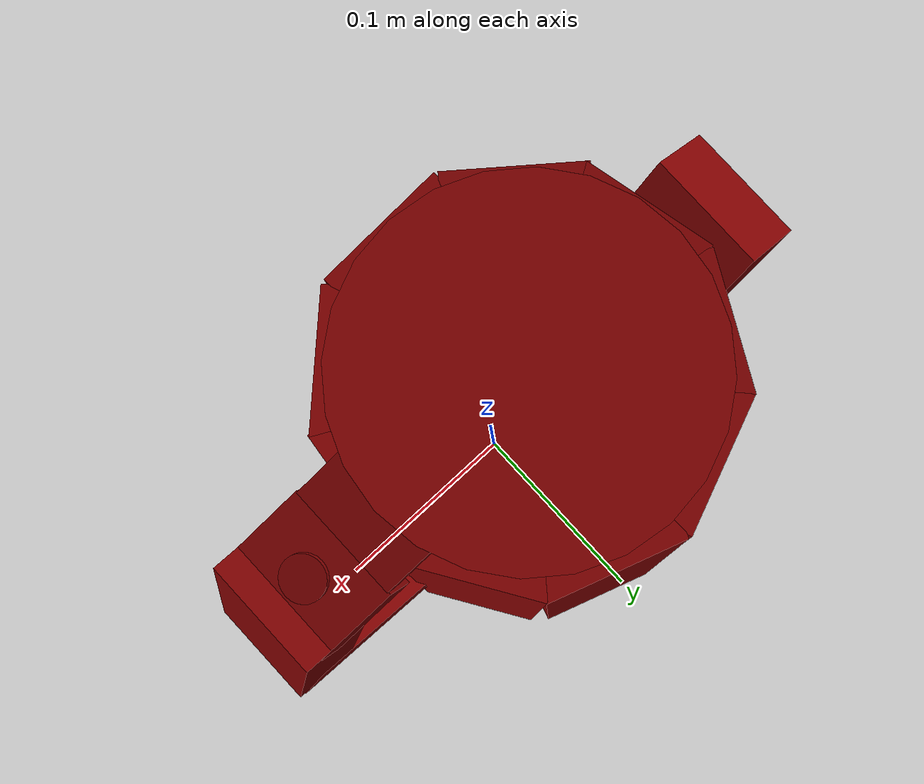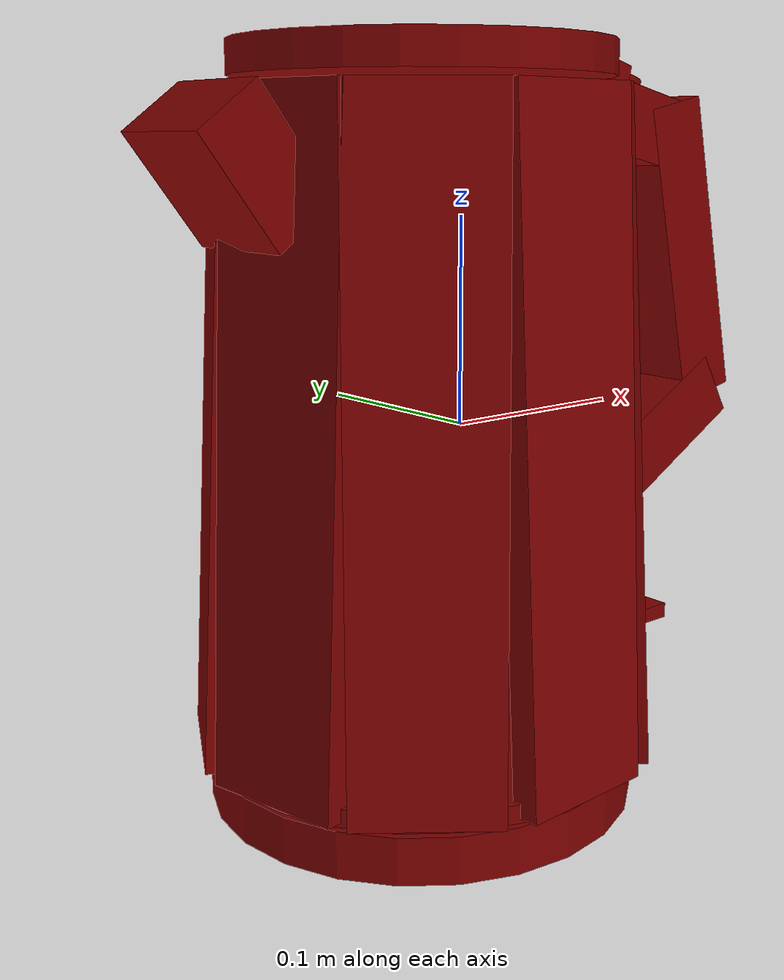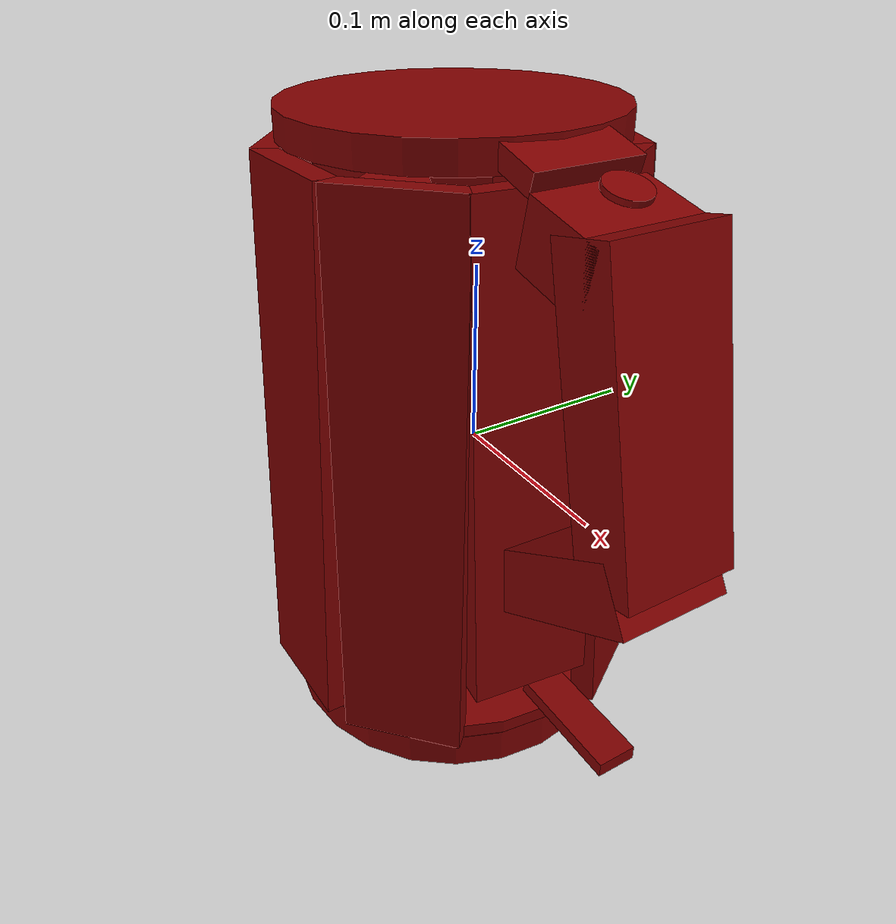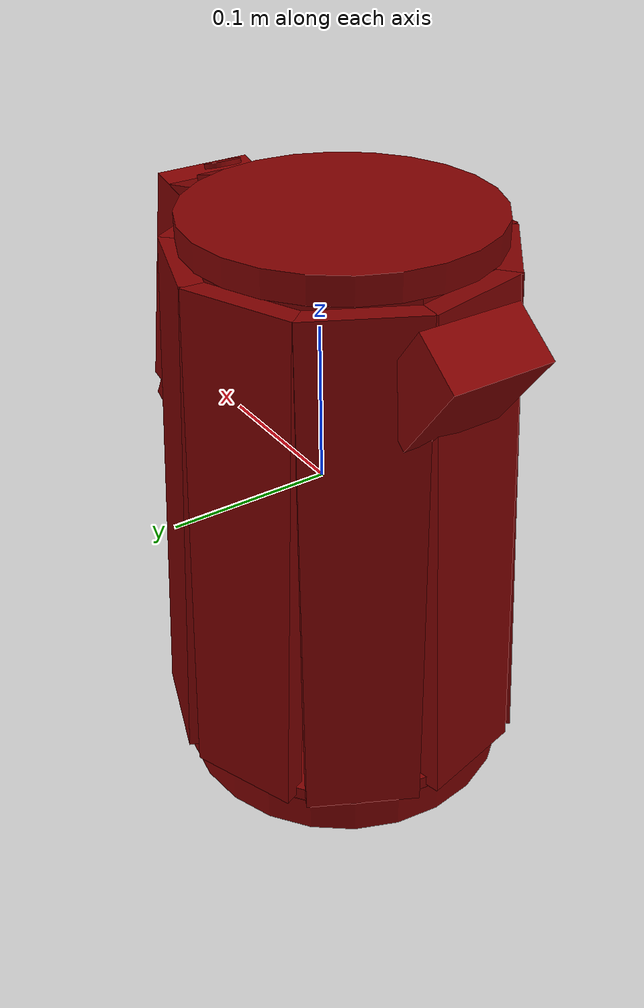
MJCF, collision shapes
<?xml version='1.0' encoding='UTF-8'?>
<mujoco model="model">
  <option timestep="0.002" gravity="0.0 0.0 -9.81"/>
  <compiler angle="radian"/>
  <asset>
    <mesh file="visuals/button_lid.obj" name="button_lid_vis"/>
    <mesh file="visuals/Body001.obj" name="Body001_vis"/>
    <mesh file="visuals/kettle_main.obj" name="kettle_main_vis"/>
    <mesh file="visuals/lid.obj" name="lid_vis"/>
    <mesh file="visuals/switch.obj" name="switch_vis"/>
    <texture file="visuals/T_BC001.png" name="Body001_material" type="2d"/>
    <material name="Body001_material" rgba="1 1 1 1.0" texture="Body001_material" shininess="0.5" specular="0.3103448502657381"/>
    <texture file="visuals/T_BC001.png" name="kettle_main_material" type="2d"/>
    <material name="kettle_main_material" rgba="1 1 1 1.0" texture="kettle_main_material" shininess="0.5" specular="0.3103448502657381"/>
    <texture file="visuals/T_BC001.png" name="button_lid_material" type="2d"/>
    <material name="button_lid_material" rgba="1 1 1 1.0" texture="button_lid_material" shininess="0.5" specular="0.3103448502657381"/>
    <texture file="visuals/T_BC001.png" name="lid_material" type="2d"/>
    <material name="lid_material" rgba="1 1 1 1.0" texture="lid_material" shininess="0.5" specular="0.3103448502657381"/>
    <texture file="visuals/T_BC001.png" name="switch_material" type="2d"/>
    <material name="switch_material" rgba="1 1 1 1.0" texture="switch_material" shininess="0.5" specular="0.3103448502657381"/>
  </asset>
  <default>
    <default class="visual">
      <geom conaffinity="0" contype="0" group="1" type="mesh"/>
    </default>
    <default class="collision">
      <geom group="0" rgba="0.5 0 0 0.5" density="1.0" solref="0.004 1" solimp="0.998 0.998 0.001"/>
    </default>
    <default class="spawn">
      <geom group="0" rgba="1 1 1 0.5" contype="0" conaffinity="0"/>
      <site group="0" rgba="1 1 1 0.5"/>
    </default>
    <default class="region">
      <geom group="1" conaffinity="0" contype="0" rgba="0 1 0 0" mass="0"/>
    </default>
  </default>
  <worldbody>
    <body>
      <body name="object">
        <geom mesh="Body001_vis" type="mesh" solimp="0.998 0.998 0.001" solref="0.001 1" friction="0.95 0.3 0.1" class="visual" material="Body001_material"/>
        <geom type="cylinder" pos="-0.024857325479388237 0.00047307158820331097 -0.16585730016231537" size="0.10320910811424255 0.011144384741783142" quat="1.0 0.0 0.0 0.0" class="collision"/>
        <body name="kettle_main">
          <geom mesh="kettle_main_vis" type="mesh" solimp="0.998 0.998 0.001" solref="0.001 1" friction="0.95 0.3 0.1" class="visual" material="kettle_main_material"/>
          <geom type="box" pos="-0.02007926255464554 -0.0943201407790184 0.004749476909637451" size="0.03371613100171089 0.006794779561460018 0.15397880971431732" quat="0.9994276165962219 -0.026396609842777252 -0.0005586353363469243 0.02115102857351303" class="collision"/>
          <geom type="box" pos="-0.08264882862567902 -0.07359472662210464 0.004749476909637451" size="0.03371613472700119 0.006794779095798731 0.15397880971431732" quat="0.9439072608947754 -0.024930225685238838 0.008693511597812176 -0.3291534185409546" class="collision"/>
          <geom type="box" pos="-0.1156603991985321 -0.020610693842172623 0.004749476909637451" size="0.03371613100171089 0.006794779095798731 0.15397880971431732" quat="0.7819451093673706 -0.020652519538998604 0.01644890196621418 -0.6227878928184509" class="collision"/>
          <geom type="box" pos="-0.10713896155357361 0.0438399463891983 0.004749476909637451" size="0.03371613100171089 0.006794779095798731 0.15397880971431732" quat="0.5196210741996765 -0.013724088668823242 0.022555315867066383 -0.853988766670227" class="collision"/>
          <geom type="box" pos="-0.05938325822353363 0.08731915056705475 0.004749462008476257" size="0.03371613100171089 0.006794779095798731 0.15397880971431732" quat="0.19608604907989502 -0.005178970284759998 0.025889592245221138 -0.9802311658859253" class="collision"/>
          <geom type="box" pos="0.006132308393716812 0.08959393948316574 0.004749462008476257" size="0.03371613472700119 0.006794779095798731 0.15397880971431732" quat="0.1565304845571518 -0.004134239628911018 -0.026076827198266983 0.9873201847076416" class="collision"/>
          <geom type="box" pos="0.05647977814078331 0.05002927407622337 0.004749462008476257" size="0.03371613100171089 0.006794779095798731 0.15397880971431732" quat="0.482163667678833 -0.012734771706163883 -0.023128297179937363 0.8756832480430603" class="collision"/>
          <geom type="box" pos="0.06915576756000519 -0.011990945786237717 0.021813130006194115" size="0.03371613472700119 0.006794779095798731 0.13689130544662476" quat="0.7489936351776123 -0.019782204180955887 -0.017485899850726128 0.6620509624481201" class="collision"/>
          <geom type="box" pos="0.04122905060648918 -0.06864036619663239 0.004749462008476257" size="0.03371613100171089 0.006794779095798731 0.15397880971431732" quat="0.9279710650444031 -0.024509314447641373 -0.009817653335630894 0.3717157244682312" class="collision"/>
          <geom class="collision" type="box" pos="0.11206722259521484 -0.00018389709293842316 -0.018444929271936417" size="0.017504960298538208 0.03018767386674881 0.050182562321424484" quat="0.8652689456939697 0.0 0.5013079643249512 0.0" name="handle_2"/>
          <geom class="collision" type="box" pos="0.10182398557662964 -0.00018389709293842316 0.14013516902923584" size="0.017032591626048088 0.03018767386674881 0.02244277484714985" quat="0.7812394499778748 0.0 -0.6242314577102661 0.0" name="handle_1"/>
          <geom class="collision" type="box" pos="0.13179261982440948 -0.00018389709293842316 0.07766880095005035" size="0.01750495843589306 0.03018767386674881 0.07697612792253494" quat="0.9942899942398071 0.0 -0.10671177506446838 0.0" name="handle_main"/>
          <geom type="box" pos="-0.12598015367984772 -0.00018389709293842316 0.12406209856271744" size="0.017234928905963898 0.03018767386674881 0.030076319351792336" quat="0.9491173624992371 0.0 -0.3149225413799286 0.0" class="collision"/>
          <geom type="cylinder" pos="-0.024857325479388237 0.00047307158820331097 -0.14691662788391113" size="0.10583113133907318 0.004288234282284975" quat="1.0 0.0 0.0 0.0" class="collision"/>
          <body name="button_lid">
            <joint axis="-0.3172944188117981 7.321014905414813e-09 -0.9483271241188049" pos="0.1055387556552887 -0.00011677568545565009 0.16294069588184357" limited="true" name="button_lid_joint" range="0.0 0.003" type="slide" damping="1" frictionloss="1" armature=".01" stiffness="0.05" springref="-1"/>
            <geom mesh="button_lid_vis" type="mesh" solimp="0.998 0.998 0.001" solref="0.001 1" friction="0.95 0.3 0.1" class="visual" material="button_lid_material"/>
            <geom class="collision" type="cylinder" pos="0.10602057725191116 -0.00011677567817969248 0.16445493698120117" size="0.01110115647315979 0.001456832978874445" quat="0.9881606101989746 2.408766460896888e-15 0.15342287719249725 2.061371873196549e-08" name="button_lid_main"/>
          </body>
          <body name="lid">
            <joint axis="0.0 1.0 0.0" pos="0.08308795094490051 1.9862614664134526e-08 0.16764721274375916" limited="true" name="lid_joint" range="0.0 1.5707963267948966" type="hinge" damping="1" frictionloss="0.1" armature=".01" stiffness="0.05" springref="-6"/>
            <geom mesh="lid_vis" type="mesh" solimp="0.998 0.998 0.001" solref="0.001 1" friction="0.95 0.3 0.1" class="visual" material="lid_material"/>
            <geom class="collision" type="cylinder" pos="-0.02333618327975273 0.00025576568441465497 0.17017686367034912" size="0.08763637393712997 0.007863394916057587" quat="1.0 0.0 0.0 0.0" name="lid_main"/>
            <geom class="collision" type="box" pos="0.06812232732772827 0.00013921409845352173 0.16786417365074158" size="0.014696674421429634 0.02867818996310234 0.005792425014078617" quat="0.9903052449226379 0.0 0.13890822231769562 0.0" name="lid_1"/>
          </body>
          <body name="switch">
            <joint axis="0.0 0.0 -1.0" pos="0.09349460899829865 -2.6310679857033392e-08 -0.1243370920419693" limited="true" name="switch_joint" range="0.0 0.01" type="slide" damping="1" frictionloss="1" armature=".01" stiffness="0.05" springref="-1"/>
            <geom mesh="switch_vis" type="mesh" solimp="0.998 0.998 0.001" solref="0.001 1" friction="0.95 0.3 0.1" class="visual" material="switch_material"/>
            <geom class="collision" type="box" pos="0.1085362508893013 -0.001545250415802002 -0.1243102103471756" size="0.033821746706962585 0.011114892549812794 0.004078427329659462" quat="1.0 0.0 0.0 0.0" name="switch_main"/>
          </body>
        </body>
        <geom class="region" name="reg_main" type="box" pos="0.0 0.0 9.53674295089968e-09" size="0.1579579690694809 0.10369506275653839 0.17748276686668396"/>
      </body>
    </body>
  </worldbody>
  <actuator>
    <motor name="button_lid_joint_actuator" joint="button_lid_joint" gear="0.5"/>
    <motor name="lid_joint_actuator" joint="lid_joint" gear="0.5"/>
    <motor name="switch_joint_actuator" joint="switch_joint" gear="0.5"/>
  </actuator>
</mujoco>
